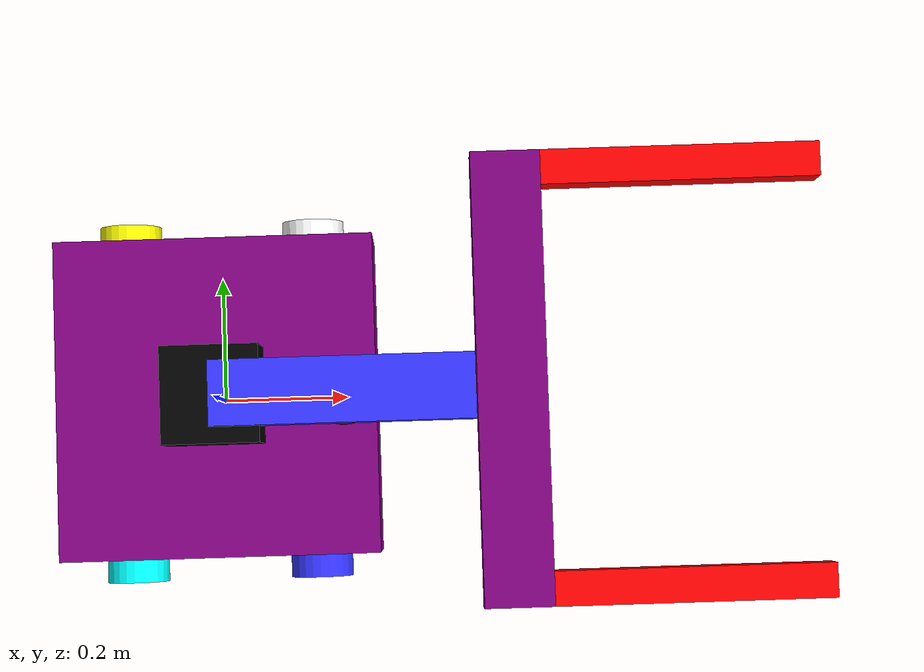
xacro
<?xml version="1.0"?>
<robot xmlns:xacro="http://www.ros.org/wiki/xacro"  name="robot">

    <xacro:include filename="robot_core.xacro" />
    <xacro:include filename="gazebo_control.xacro" />
    <xacro:include filename="lidar.xacro" />
    <xacro:include filename="ros2_control.xacro" />

</robot>

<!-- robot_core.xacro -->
<robot xmlns:xacro="http://www.ros.org/wiki/xacro" name="670610792_lab52">
    <xacro:include filename="inertial_macros.xacro" />

    <material name="white">
        <color rgba="1 1 1 1" />
    </material>

    <material name="orange">
        <color rgba="1 0.3 0.1 1"/>
    </material>

    <material name="blue">
        <color rgba="0.2 0.2 1 1"/>
    </material>

    <material name="black">
        <color rgba="0 0 0 1"/>
    </material>

    <material name="red">
        <color rgba="1 0 0 1"/>
    </material>
    <material name="purple">
        <color rgba="0.5 0 0.5 1"/>
    </material>
    <material name="yellow">
        <color rgba="1 1 0 1"/>
    </material>

    <material name="cyan">
        <color rgba="0 1 1 1"/>
    </material>

    <link name="base_link">

    </link>

    <!-- BASE_FOOTPRINT LINK -->
    <joint name="base_footprint_joint" type="fixed">
        <parent link="base_link"/>
        <child link="base_footprint"/>
        <origin xyz="0 0 0" rpy="0 0 0"/>
    </joint>

    <link name="base_footprint">
    </link>

    <!-- Chassis รถ -->
    <joint name="chassis_joint" type="fixed">
    <parent link="base_link"/>
    <child link="chassis"/>
    <origin xyz="0 0 0"/>
    </joint>

    <link name="chassis">
        <visual>
            <origin xyz="0 0 0.075" rpy="0 0 0"/>
            <geometry>
                <box size="0.5 0.5 0.175"/>
            </geometry>
            <material name="purple"/>
        </visual>
        <collision>
            <origin xyz="0 0 0.075" rpy="0 0 0"/>
            <geometry>
                <box size="0.5 0.5 0.175"/>
            </geometry>
        </collision>
        <xacro:inertial_box mass="100.0" x="0.5" y="0.5" z="0.175">
                <origin xyz="0.0 0.0 0.075" rpy="0 0 0"/>
        </xacro:inertial_box>
    </link>
    <gazebo reference="chassis">
        <material>Gazebo/Black</material>
        <mu1>0.0</mu1>
        <mu2>0.0</mu2>
    </gazebo>

    <!-- ล้อซ้ายหน้า -->
    <joint name="left_wheel_joint" type="continuous">
        <parent link="base_link"/>
        <child link="left_wheel"/>
        <origin xyz="0.15 0.27 0" rpy="-${pi/2} 0 0"/>
        <axis xyz="0 0 1"/>
    </joint>

    <link name="left_wheel">
        <visual>
            <geometry>
                <cylinder length="0.04" radius="0.05" />
            </geometry>
            <material name="white"/>
        </visual>
        <collision>
            <origin xyz="0 0 0" rpy="0 0 0"/>
            <geometry>
                <cylinder length="0.04" radius="0.05"/>
            </geometry>
        </collision>
        <xacro:inertial_cylinder mass="2.0" length="0.04" radius="0.05">
            <origin xyz="0 0 0" rpy="0 0 0"/>
        </xacro:inertial_cylinder>
    </link>

    <gazebo reference="left_wheel">
        <material>Gazebo/Red</material>
        <mu1>1.0</mu1>
        <mu2>1.0</mu2>
    </gazebo>

    <!-- ล้อขวาหน้า -->
    <joint name="right_wheel_joint" type="continuous">
        <parent link="base_link"/>
        <child link="right_wheel"/>
        <origin xyz="0.15 -0.27 0" rpy="${pi/2} 0 0"/>
        <axis xyz="0 0 -1"/>
    </joint>

    <link name="right_wheel">
        <visual>
            <geometry>
                <cylinder length="0.04" radius="0.05" />
            </geometry>
            <material name="blue"/>
        </visual>
        <collision>
            <origin xyz="0 0 0" rpy="0 0 0"/>
            <geometry>
                <cylinder length="0.04" radius="0.05"/>
            </geometry>
        </collision>
        <xacro:inertial_cylinder mass="2.0" length="0.04" radius="0.05">
            <origin xyz="0 0 0" rpy ="0 0 0"/>
        </xacro:inertial_cylinder>
    </link>
    <gazebo reference="right_wheel">
        <material>Gazebo/Green</material>
        <mu1>1.0</mu1>
        <mu2>1.0</mu2>
    </gazebo>

    <!-- ล้อซ้ายหลัง -->
    <joint name="rear_left_wheel_joint" type="continuous">
        <parent link="base_link"/>
        <child link="rear_left_wheel"/>
        <origin xyz="-0.15 0.27 0" rpy="-${pi/2} 0 0"/>
        <axis xyz="0 0 1"/>
    </joint>

    <link name="rear_left_wheel">
        <visual>
            <geometry>
                <cylinder length="0.04" radius="0.05" />
            </geometry>
            <material name="yellow"/>
        </visual>
        <collision>
            <origin xyz="0 0 0" rpy="0 0 0"/>
            <geometry>
                <cylinder length="0.04" radius="0.05"/>
            </geometry>
        </collision>
        <xacro:inertial_cylinder mass="2.0" length="0.04" radius="0.05">
            <origin xyz="0 0 0" rpy="0 0 0"/>
        </xacro:inertial_cylinder>
    </link>
    <gazebo reference="rear_left_wheel">
        <material>Gazebo/Blue</material>
        <mu1>0.0</mu1>
        <mu2>0.0</mu2>
    </gazebo>

    <!-- ล้อขวาหลัง -->
    <joint name="rear_right_wheel_joint" type="continuous">
        <parent link="base_link"/>
        <child link="rear_right_wheel"/>
        <origin xyz="-0.15 -0.27 0" rpy="${pi/2} 0 0"/>
        <axis xyz="0 0 -1"/>
    </joint>

    <link name="rear_right_wheel">
        <visual>
            <geometry>
                <cylinder length="0.04" radius="0.05" />
            </geometry>
            <material name="cyan"/>
        </visual>
        <collision>
             <origin xyz="0 0 0" rpy="0 0 0"/>
            <geometry>
                <cylinder length="0.04" radius="0.05"/>
            </geometry>
        </collision>
        <xacro:inertial_cylinder mass="2.0" length="0.04" radius="0.05">
            <origin xyz="0 0 0" rpy ="0 0 0"/>
        </xacro:inertial_cylinder>
    </link>
    <gazebo reference="rear_right_wheel">
        <material>Gazebo/Yellow</material>
        <mu1>0.0</mu1>
        <mu2>0.0</mu2>
    </gazebo>

    <!-- caster wheel -->
    <joint name="caster_wheel_joint" type="fixed">
        <parent link="chassis"/>
        <child link="caster_wheel"/>
        <origin xyz="0.2 0 0.015" rpy="0 0 0"/>
    </joint>

    <link name="caster_wheel">
        <visual>
            <geometry>
                <sphere radius="0.05" />
            </geometry>
            <material name="black"/>
        </visual>
        <collision>
            <origin xyz="0 0 0" rpy="0 0 0"/>
            <geometry>
                <sphere radius="0.05"/>
            </geometry>
        </collision>
        <xacro:inertial_sphere mass="0.1" radius="0.05">
            <origin xyz="0 0 0" rpy="0 0 0"/>
        </xacro:inertial_sphere>
    </link>

    <gazebo reference="caster_wheel">
        <material>Gazebo/Orange</material>
        <mu1>0.0</mu1>
        <mu2>0.0</mu2>
    </gazebo>

    <joint name="casterback_wheel_joint" type="fixed">
        <parent link="chassis"/>
        <child link="casterback_wheel"/>
        <origin xyz="-0.2 0 0.015" rpy="0 0 0"/>
    </joint>

    <link name="casterback_wheel">
        <visual>
            <geometry>
                <sphere radius="0.05" />
            </geometry>
            <material name="orange"/>
        </visual>
        <collision>
            <origin xyz="0 0 0" rpy="0 0 0"/>
            <geometry>
                <sphere radius="0.05"/>
            </geometry>
        </collision>
        <xacro:inertial_sphere mass="0.1" radius="0.05">
            <origin xyz="0 0 0" rpy="0 0 0"/>
        </xacro:inertial_sphere>
    </link>

    <gazebo reference="casterback_wheel">
        <material>Gazebo/Purple</material>
        <mu1>0.0</mu1>
        <mu2>0.0</mu2>
    </gazebo>

    <!-- Arm parts -->
   <joint name="arm_base_joint" type="fixed">
        <parent link="chassis"/>
        <child link="arm_base"/>
        <origin xyz="0.0 0 0.1625" rpy="0 0 0"/>
    </joint>

    <link name="arm_base">
        <visual>
            <origin xyz="0 0 0.05" rpy="0 0 0"/>
            <geometry><box size="0.15 0.15 0.1"/></geometry>
            <material name="black"/>
        </visual>
        <collision>
            <origin xyz="0 0 0.05" rpy="0 0 0"/>
            <geometry><box size="0.15 0.15 0.1"/></geometry>
        </collision>
        <xacro:inertial_box mass="20.0" x="0.15" y="0.15" z="0.1">
            <origin xyz="0 0 0.05" rpy="0 0 0"/>
        </xacro:inertial_box>
    </link>

    <joint name="shoulder_joint" type="revolute">
        <parent link="arm_base"/>
        <child link="boom_link"/>
        <origin xyz="0 0 0.1" rpy="0 0 0"/> <axis xyz="0 -1 0"/>

        <limit lower="-0.785" upper="1.57" effort="100000.0" velocity="0.5"/>

        <dynamics damping="1000.0" friction="1000.0"/>
    </joint>

    <link name="boom_link">
        <visual>
            <origin xyz="0.25 0 0" rpy="0 0 0"/>
            <geometry><box size="0.5 0.1 0.05"/></geometry>
            <material name="blue"/>
        </visual>
        <collision>
            <origin xyz="0.25 0 0" rpy="0 0 0"/>
            <geometry><box size="0.5 0.1 0.05"/></geometry>
        </collision>
        <xacro:inertial_box mass="3.0" x="0.5" y="0.1" z="0.05">
            <origin xyz="0.25 0 0" rpy="0 0 0"/>
        </xacro:inertial_box>
    </link>

    <joint name="wrist_joint" type="revolute">
        <parent link="boom_link"/>
        <child link="wrist_link"/>
        <origin xyz="0.45 0 0.025" rpy="0 0 0"/>
        <axis xyz="0 -1 0"/>
        <limit lower="-1.5" upper="1.5" effort="50000.0" velocity="0.5"/>
        <dynamics damping="100.0" friction="100.0"/>
    </joint>

    <link name="wrist_link">
        <visual>
            <origin xyz="0 0 0.05" rpy="0 0 0"/>
            <geometry><cylinder radius="0.04" length="0.1"/></geometry>
            <material name="black"/>
        </visual>
        <collision>
            <origin xyz="0 0 0.05" rpy="0 0 0"/>
            <geometry><cylinder radius="0.04" length="0.1"/></geometry>
        </collision>
        <xacro:inertial_cylinder mass="0.5" radius="0.04" length="0.1">
            <origin xyz="0 0 0.05" rpy="0 0 0"/>
        </xacro:inertial_cylinder>
    </link>

    <joint name="gripper_base_joint" type="fixed">
        <parent link="wrist_link"/>
        <child link="gripper_base"/>
        <origin xyz="0 0 0.1" rpy="0 0 0"/>
    </joint>

    <link name="gripper_base">
        <visual>
            <origin xyz="0 0 0.025" rpy="0 0 0"/>
            <geometry><box size="0.1 0.65 0.05"/></geometry>
            <material name="purple"/>
        </visual>
        <collision>
            <origin xyz="0 0 0.025" rpy="0 0 0"/>
            <geometry><box size="0.1 0.65 0.05"/></geometry>
        </collision>
        <xacro:inertial_box mass="1.0" x="0.1" y="0.65" z="0.05">
            <origin xyz="0 0 0.025" rpy="0 0 0"/>
        </xacro:inertial_box>
    </link>

    <joint name="left_finger_joint" type="prismatic">
        <parent link="gripper_base"/>
        <child link="left_finger"/>
        <origin xyz="0.05 0.30 0.025" rpy="0 0 0"/>
        <axis xyz="0 -1 0"/>

        <limit lower="0.0" upper="0.265" effort="1000.0" velocity="0.1"/>

        <dynamics damping="100.0" friction="100.0"/>
    </joint>

    <link name="left_finger">
        <visual>
            <origin xyz="0.2 0 0" rpy="0 0 0"/>
            <geometry><box size="0.4 0.05 0.05"/></geometry>
            <material name="red"/>
        </visual>
        <collision name="left_finger_collision"> <origin xyz="0.2 0 0" rpy="0 0 0"/>
            <geometry><box size="0.4 0.05 0.05"/></geometry>
        </collision>
        <xacro:inertial_box mass="0.5" x="0.4" y="0.05" z="0.05">
            <origin xyz="0.2 0 0" rpy="0 0 0"/>
        </xacro:inertial_box>
    </link>

    <joint name="right_finger_joint" type="prismatic">
        <parent link="gripper_base"/>
        <child link="right_finger"/>
        <origin xyz="0.05 -0.30 0.025" rpy="0 0 0"/>
        <axis xyz="0 1 0"/>

        <limit lower="0.0" upper="0.265" effort="1000.0" velocity="0.1"/>

        <dynamics damping="100.0" friction="100.0"/>
    </joint>

    <link name="right_finger">
        <visual>
            <origin xyz="0.2 0 0" rpy="0 0 0"/>
            <geometry><box size="0.4 0.05 0.05"/></geometry>
            <material name="red"/>
        </visual>
        <collision>
            <origin xyz="0.2 0 0" rpy="0 0 0"/>
            <geometry><box size="0.4 0.05 0.05"/></geometry>
        </collision>
        <xacro:inertial_box mass="0.5" x="0.4" y="0.05" z="0.05">
            <origin xyz="0.2 0 0" rpy="0 0 0"/>
        </xacro:inertial_box>
    </link>

    <gazebo reference="left_finger">
        <material>Gazebo/Red</material>
        <mu1>100000.0</mu1> <mu2>100000.0</mu2>
        <kp>100000.0</kp> <kd>100.0</kd>
        <sensor name="left_finger_contact" type="contact">
            <contact>
                <collision>left_finger_collision</collision>
            </contact>
        </sensor>
    </gazebo>
    <gazebo reference="right_finger">
        <material>Gazebo/Red</material>
        <mu1>100000.0</mu1> <mu2>100000.0</mu2>
        <kp>100000.0</kp> <kd>100.0</kd>
        <sensor name="right_finger_contact" type="contact">
            <always_on>true</always_on>
            <contact>
                <collision>right_finger_collision</collision>
            </contact>
        </sensor>

    </gazebo>

    <!-- Plugin -->
    <gazebo>
        <plugin name="gazebo_grasp_fix" filename="libgazebo_grasp_fix.so">
            <arm>
                <arm_name>my_gripper</arm_name>

                <palm_link>wrist_link</palm_link>

                <gripper_link>left_finger</gripper_link>
                <gripper_link>right_finger</gripper_link>
            </arm>

            <forces_angle_tolerance>100</forces_angle_tolerance>
            <update_rate>10</update_rate>
            <grip_count_threshold>2</grip_count_threshold>
            <max_grip_count>8</max_grip_count>
            <release_tolerance>0.01</release_tolerance>
            <disable_collisions_on_attach>false</disable_collisions_on_attach>
            <contact_topic>__default_topic__</contact_topic>
        </plugin>
    </gazebo>
</robot>

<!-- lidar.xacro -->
<robot xmlns:xacro="http://www.ros.org/wiki/xacro" >

    <joint name="laser_joint" type="fixed">
        <parent link="chassis"/>
        <child link="laser_frame"/>
        <origin xyz="0.2 0 0.18" rpy="0 0 0"/>
    </joint>

    <link name="laser_frame">
        <visual>
            <geometry>
                <cylinder radius="0.05" length="0.04"/>
            </geometry>
            <material name="red"/>
        </visual>
        <collision>
            <geometry>
                <cylinder radius="0.05" length="0.04"/>
            </geometry>
        </collision>
        <xacro:inertial_cylinder mass="0.1" length="0.04" radius="0.05">
            <origin xyz="0 0 0" rpy="0 0 0"/>
        </xacro:inertial_cylinder>
    </link>

    <gazebo reference="laser_frame">
        <material>Gazebo/Red</material>

        <sensor name="laser" type="ray">
            <pose> 0 0 0 0 0 0 </pose>
            <visualize>true</visualize>
            <update_rate>10</update_rate>
            <ray>
                <scan>
                    <horizontal>
                        <samples>360</samples>
                        <min_angle>-3.14</min_angle>
                        <max_angle>3.14</max_angle>
                    </horizontal>
                </scan>
                <range>
                    <min>0.3</min>
                    <max>12.0</max>
                </range>
            </ray>

            <plugin name="laser_controller" filename="libgazebo_ros_ray_sensor.so">
                <ros>
                    <argument>~/out:=scan</argument>
                </ros>
                <output_type>sensor_msgs/LaserScan</output_type>
                <frame_name>laser_frame</frame_name>
            </plugin>
        </sensor>
    </gazebo>

</robot>
